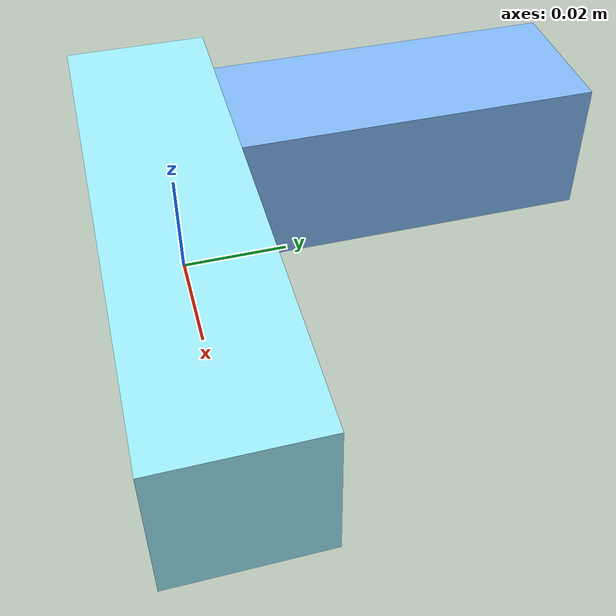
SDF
<sdf version="1.4"><world name="default"><model name="object0"><link name="link1"><pose>0 0 0 0 0 0</pose><inertial><pose>0 0 0 0 0 0</pose><mass>0.06178328506874593</mass><inertia><ixx>9.267492760311888e-06</ixx><ixy>0</ixy><iyy>7.203131405045448e-05</iyy><ixz>0</ixz><iyz>0</iyz><izz>7.203131405045448e-05</izz></inertia></inertial><visual name="link1_visual"><pose>0 0  0 0 0 0</pose><geometry><box><size>0.11441349086804802 0.03 0.03</size></box></geometry><material><diffuse>0.6110760481835678 0.9243118466439502 0.9724745124209992 1</diffuse></material></visual><collision><pose>0 0  0 0 0 0</pose><geometry><box><size>0.11441349086804802 0.03 0.03</size></box></geometry></collision></link><link name="link2"><pose>-0.02946650137784298 0.03847499791380066 0 0 0 0</pose><inertial><pose>0 0 0 0 0 0</pose><mass>0.05537208158067356</mass><inertia><ixx>5.239875996883957e-05</ixx><ixy>0</ixy><iyy>8.033566169329388e-06</iyy><ixz>0</ixz><iyz>0</iyz><izz>5.267100603661122e-05</izz></inertia></inertial><visual name="link2_visual"><pose>0 0  0 0 0 0</pose><geometry><box><size>0.03 0.10254089181606216 0.028999999999999998</size></box></geometry><material><diffuse>0.502228906561585 0.7167582786812566 0.9547032500019526 1</diffuse></material></visual><collision><pose>0 0  0 0 0 0</pose><geometry><box><size>0.03 0.10254089181606216 0.028999999999999998</size></box></geometry></collision></link><joint name="link_joint_0" type="fixed"><parent>link1</parent><child>link2</child><pose>0 0 0 0 0 0</pose><axis><xyz>0 0 1</xyz></axis></joint></model></world></sdf>
